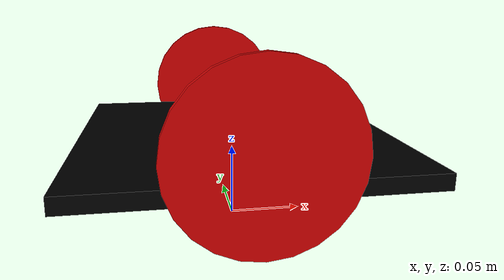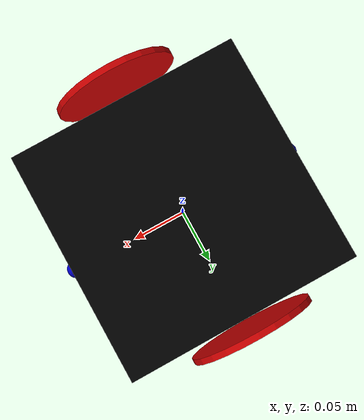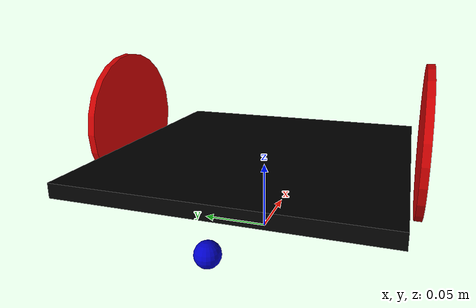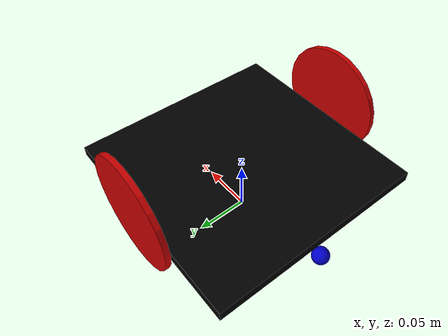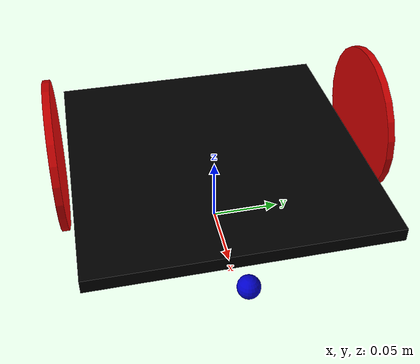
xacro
<?xml version="1.0"?>
<robot xmlns:xacro="http://www.ros.org/wiki/xacro" name="w1bot">

  <xacro:property name="base_width" value="0.21"/>
  <xacro:property name="base_len" value="0.21"/>
  <xacro:property name="wheel_radius" value="0.0525"/>
  <xacro:property name="base_wheel_gap" value="0.007"/>
  <xacro:property name="wheel_separation" value="0.25"/>
  <xacro:property name="wheel_joint_x_offset" value="0.0"/>
  <xacro:property name="wheel_joint_z_offset" value="0.02"/>

  <xacro:property name="caster_wheel_radius" value="0.008"/>
  <xacro:property name="caster_wheel_mass" value="0.001"/>
  <xacro:property name="caster_wheel_joint_offset" value="0.105"/>
  <xacro:property name="caster_wheel_joint_z_offset" value="0.025"/>

  <xacro:include filename="$(find w1bot_description)/urdf/w1bot_gazebo_plugins.xacro" />

  <!--Color Properties-->
  <material name="blue">
    <color rgba="0 0 0.8 1"/>
  </material>
  <material name="black">
    <color rgba="0 0 0 1"/>
  </material>
  <material name="white">
    <color rgba="1 1 1 1"/>
  </material>
  <material name="red">
    <color rgba="0.8 0.0 0.0 1.0"/>
  </material>

  <!--Interial macros-->
  <xacro:macro name="cylinder_inertia" params="m r h">
    <inertial>
      <mass value="${m}"/>
      <inertia ixx="${m*(3*r*r+h*h)/12}" ixy = "0" ixz = "0" iyy="${m*(3*r*r+h*h)/12}" iyz = "0" izz="${m*r*r/2}"/>
    </inertial>
  </xacro:macro>

  <xacro:macro name="box_inertia" params="m w h d">
    <inertial>
      <mass value="${m}"/>
      <inertia ixx="${m / 12.0 * (d*d + h*h)}" ixy="0.0" ixz="0.0" iyy="${m / 12.0 * (w*w + h*h)}" iyz="0.0" izz="${m / 12.0 * (w*w + d*d)}"/>
    </inertial>
  </xacro:macro>

  <xacro:macro name="sphere_inertia" params="m r">
    <inertial>
      <mass value="${m}"/>
      <inertia ixx="${2.0*m*(r*r)/5.0}" ixy="0.0" ixz="0.0" iyy="${2.0*m*(r*r)/5.0}" iyz="0.0" izz="${2.0*m*(r*r)/5.0}"/>
    </inertial>
  </xacro:macro>

  <!--Base Footprint-->
  <link name="base_footprint">
    <xacro:box_inertia m="10" w="0.001" h="0.001" d="0.001"/>
    <visual>
        <origin xyz="0 0 0" rpy="0 0 0" />
        <geometry>
            <box size="0.001 0.001 0.001" />
        </geometry>
    </visual>
  </link>

  <!--Base link-->
  <link name="base_link">
    <xacro:box_inertia m="1" w="${base_len}" h="${base_width}" d="0.01"/>
    <visual>
      <geometry>
        <box size="${base_len} ${base_width} 0.01"/>
      </geometry>
      <material name="black"/>
    </visual>
    <collision>
      <geometry>
        <box size="${base_len} ${base_width} 0.01"/>
      </geometry>
    </collision>
  </link>

  <!--base_link to base_footprint Joint-->
  <joint name="base_link_joint" type="fixed">
    <origin xyz="0 0 ${wheel_radius + 0.005}" rpy="0 0 0" />
    <parent link="base_footprint"/>
    <child link="base_link" />
  </joint>

  <!--Wheel link & joint macro-->
  <xacro:macro name="wheel" params="prefix reflect">
    <link name="${prefix}_wheel">
      <visual>
        <origin xyz="0 0 0" rpy="${pi/2} 0 0"/>
        <geometry>
          <cylinder radius="${wheel_radius}" length="0.005"/>
        </geometry>
        <material name="red"/>
      </visual>
      <collision>
        <origin xyz="0 0 0" rpy="${pi/2} 0 0"/>
        <geometry>
          <cylinder radius="${wheel_radius}" length="0.005"/>
        </geometry>
      </collision>
      <xacro:cylinder_inertia m="1" r="${wheel_radius}" h="0.005"/>
    </link>

    <joint name="${prefix}_wheel_joint" type="continuous">
      <axis xyz="0 1 0" rpy="0 0 0" />
      <parent link="base_link"/>
      <child link="${prefix}_wheel"/>
      <origin xyz="${wheel_joint_x_offset} ${((base_width/2)+base_wheel_gap)*reflect} ${wheel_joint_z_offset}" rpy="0 0 0"/>
    </joint>
  </xacro:macro>

  <!--Create Left & Right Wheel links/joints-->
  <xacro:wheel prefix="left" reflect="1"/>
  <xacro:wheel prefix="right" reflect="-1"/>

  <!--Caster Front Wheel Link-->
  <link name="caster_front_wheel">
    <visual>
      <origin xyz="0 0 0" rpy="0 0 0"/>
      <geometry>
        <sphere radius="${caster_wheel_radius}"/>
      </geometry>
      <material name="blue"/>
    </visual>
    <collision>
      <origin xyz="0 0 0" rpy="0 0 0"/>
      <geometry>
        <sphere radius="${caster_wheel_radius}"/>
      </geometry>
    </collision>
    <xacro:sphere_inertia m="1" r="${caster_wheel_radius}"/>
  </link>

  <!--Caster Front Wheel Joint-->
  <joint name="caster_front_wheel_joint" type="continuous">
    <axis xyz="0 1 0" rpy="0 0 0" />
    <parent link="base_link"/>
    <child link="caster_front_wheel"/>
    <origin xyz="-${caster_wheel_joint_offset} 0 -${caster_wheel_joint_z_offset}" rpy="0 0 0"/>
  </joint>

<!--Caster Rear Wheel Link-->
  <link name="caster_rear_wheel">
    <visual>
      <origin xyz="0 0 0" rpy="0 0 0"/>
      <geometry>
        <sphere radius="${caster_wheel_radius}"/>
      </geometry>
      <material name="blue"/>
    </visual>
    <collision>
      <origin xyz="0 0 0" rpy="0 0 0"/>
      <geometry>
        <sphere radius="${caster_wheel_radius}"/>
      </geometry>
    </collision>
    <xacro:sphere_inertia m="1" r="${caster_wheel_radius}"/>
  </link>

  <!--Caster Rear Wheel Joint-->
  <joint name="caster_rear_wheel_joint" type="continuous">
    <axis xyz="0 1 0" rpy="0 0 0" />
    <parent link="base_link"/>
    <child link="caster_rear_wheel"/>
    <origin xyz="${caster_wheel_joint_offset} 0 -${caster_wheel_joint_z_offset}" rpy="0 0 0"/>
  </joint>
</robot>
